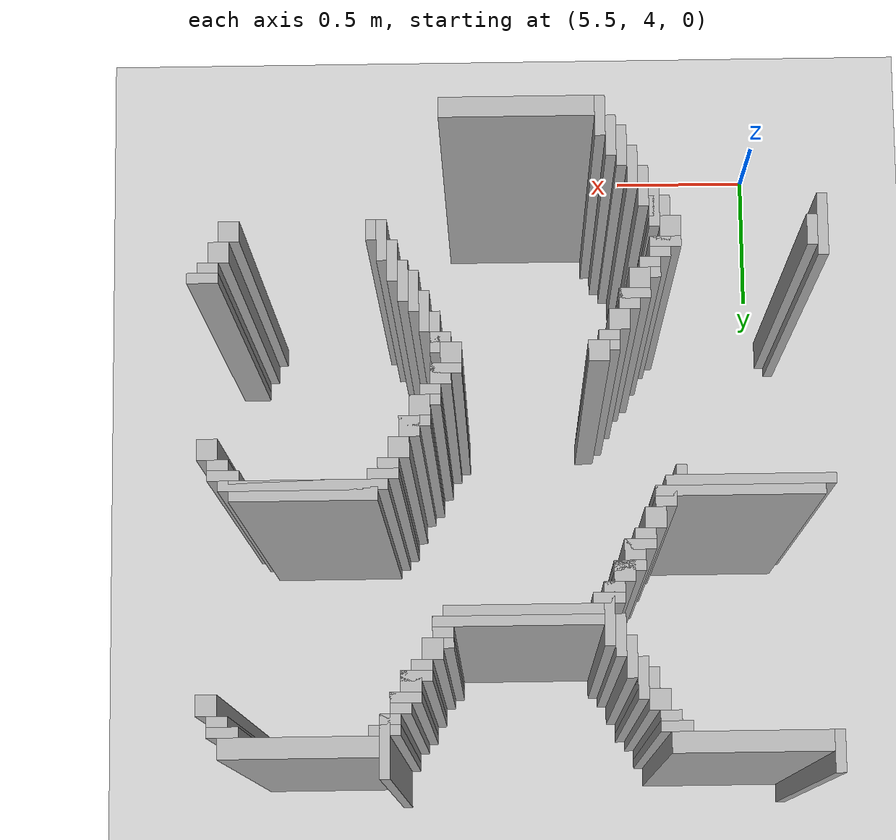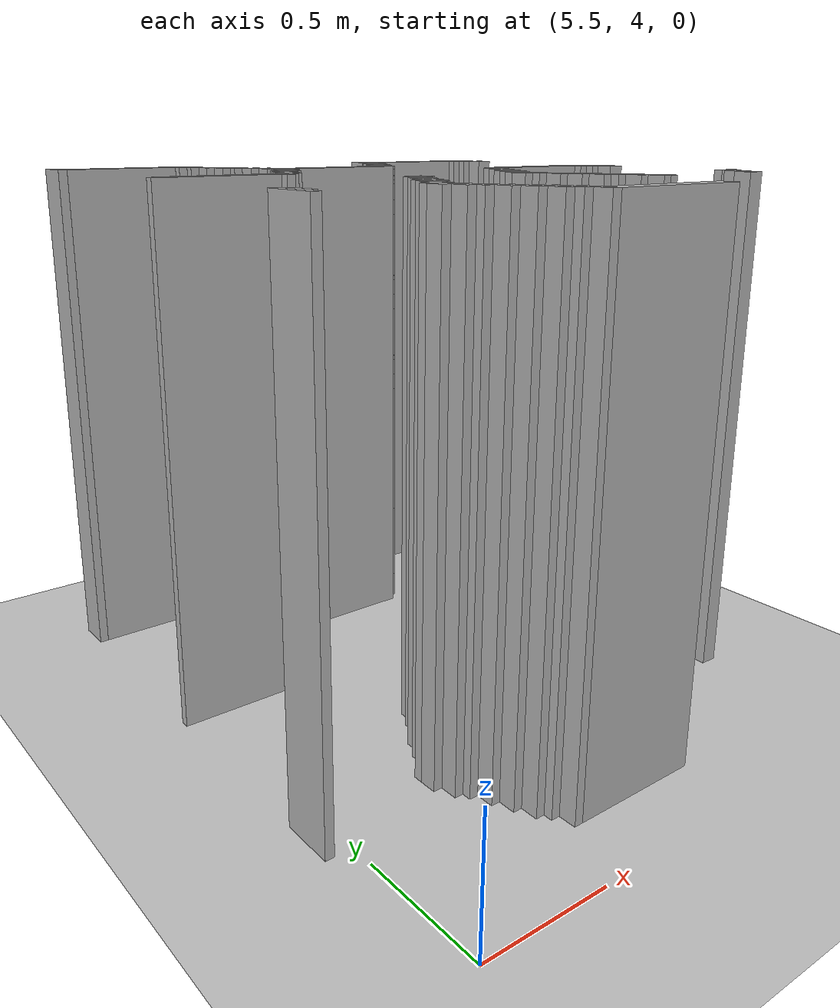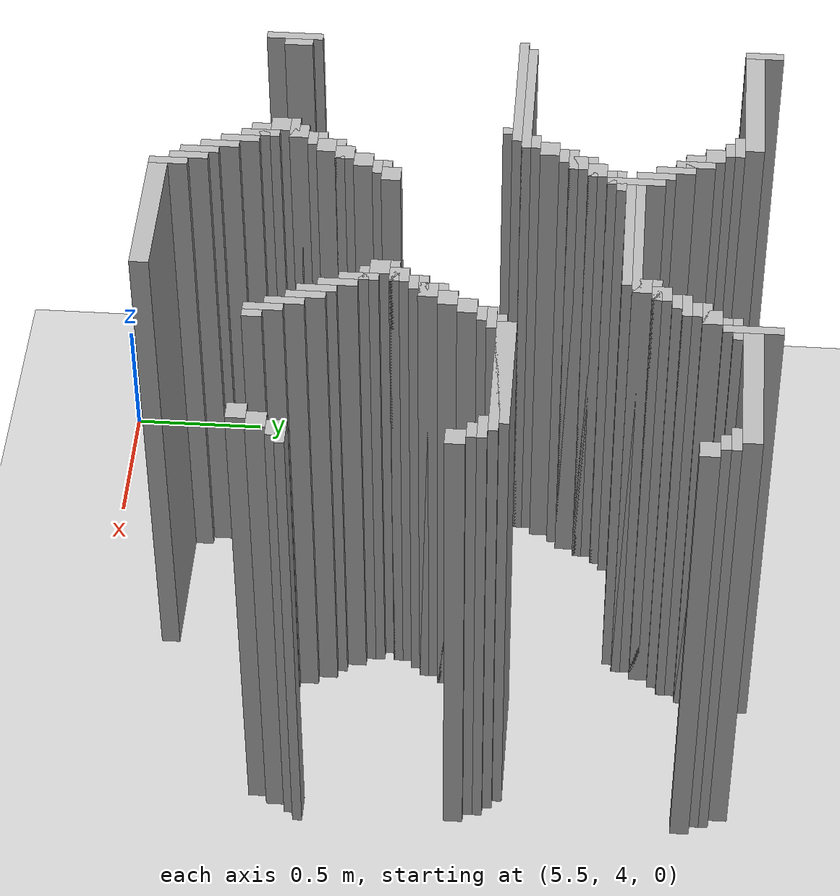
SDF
<sdf version="1.6">
 <world name="slam_world">
  <model name="ground_plane">
   <static>true</static>
   <link name="link">
    <collision name="collision">
     <geometry><plane><normal>0 0 1</normal><size>100 100</size></plane></geometry>
    </collision>
    <visual name="visual">
     <geometry><plane><normal>0 0 1</normal><size>100 100</size></plane></geometry>
     <material>
      <ambient>0.8 0.8 0.8 1</ambient>
      <diffuse>0.8 0.8 0.8 1</diffuse>
      <specular>0.8 0.8 0.8 1</specular>
     </material>
    </visual>
   </link>
  </model>
  <model name="wall_3671">
   <static>true</static>
   <pose>5.41183294663573 6.438515081206496 1.0 0 0 0</pose>
   <link name="link">
    <collision name="collision">
     <geometry><box><size>0.03480278422273782 0.13921113689095127 2.0</size></box></geometry>
    </collision>
    <visual name="visual">
     <geometry><box><size>0.03480278422273782 0.13921113689095127 2.0</size></box></geometry>
     <material><ambient>0.5 0.5 0.5 1</ambient><diffuse>0.7 0.7 0.7 1</diffuse></material>
    </visual>
   </link>
  </model>
  <model name="wall_3672">
   <static>true</static>
   <pose>6.8735498839907185 6.403712296983758 1.0 0 0 0</pose>
   <link name="link">
    <collision name="collision">
     <geometry><box><size>0.03480278422273782 0.2088167053364269 2.0</size></box></geometry>
    </collision>
    <visual name="visual">
     <geometry><box><size>0.03480278422273782 0.2088167053364269 2.0</size></box></geometry>
     <material><ambient>0.5 0.5 0.5 1</ambient><diffuse>0.7 0.7 0.7 1</diffuse></material>
    </visual>
   </link>
  </model>
  <model name="wall_3692">
   <static>true</static>
   <pose>5.690255220417633 6.403712296983758 1.0 0 0 0</pose>
   <link name="link">
    <collision name="collision">
     <geometry><box><size>0.5220417633410672 0.06960556844547564 2.0</size></box></geometry>
    </collision>
    <visual name="visual">
     <geometry><box><size>0.5220417633410672 0.06960556844547564 2.0</size></box></geometry>
     <material><ambient>0.5 0.5 0.5 1</ambient><diffuse>0.7 0.7 0.7 1</diffuse></material>
    </visual>
   </link>
  </model>
  <model name="wall_3693">
   <static>true</static>
   <pose>7.151972157772621 6.403712296983758 1.0 0 0 0</pose>
   <link name="link">
    <collision name="collision">
     <geometry><box><size>0.5220417633410672 0.06960556844547564 2.0</size></box></geometry>
    </collision>
    <visual name="visual">
     <geometry><box><size>0.5220417633410672 0.06960556844547564 2.0</size></box></geometry>
     <material><ambient>0.5 0.5 0.5 1</ambient><diffuse>0.7 0.7 0.7 1</diffuse></material>
    </visual>
   </link>
  </model>
  <model name="wall_3716">
   <static>true</static>
   <pose>5.933874709976798 6.351508120649652 1.0 0 0 0</pose>
   <link name="link">
    <collision name="collision">
     <geometry><box><size>0.10440835266821345 0.03480278422273782 2.0</size></box></geometry>
    </collision>
    <visual name="visual">
     <geometry><box><size>0.10440835266821345 0.03480278422273782 2.0</size></box></geometry>
     <material><ambient>0.5 0.5 0.5 1</ambient><diffuse>0.7 0.7 0.7 1</diffuse></material>
    </visual>
   </link>
  </model>
  <model name="wall_3717">
   <static>true</static>
   <pose>6.8735498839907185 6.351508120649652 1.0 0 0 0</pose>
   <link name="link">
    <collision name="collision">
     <geometry><box><size>0.10440835266821345 0.03480278422273782 2.0</size></box></geometry>
    </collision>
    <visual name="visual">
     <geometry><box><size>0.10440835266821345 0.03480278422273782 2.0</size></box></geometry>
     <material><ambient>0.5 0.5 0.5 1</ambient><diffuse>0.7 0.7 0.7 1</diffuse></material>
    </visual>
   </link>
  </model>
  <model name="wall_3718">
   <static>true</static>
   <pose>7.395591647331786 6.351508120649652 1.0 0 0 0</pose>
   <link name="link">
    <collision name="collision">
     <geometry><box><size>0.10440835266821345 0.03480278422273782 2.0</size></box></geometry>
    </collision>
    <visual name="visual">
     <geometry><box><size>0.10440835266821345 0.03480278422273782 2.0</size></box></geometry>
     <material><ambient>0.5 0.5 0.5 1</ambient><diffuse>0.7 0.7 0.7 1</diffuse></material>
    </visual>
   </link>
  </model>
  <model name="wall_3729">
   <static>true</static>
   <pose>5.951276102088166 6.316705336426914 1.0 0 0 0</pose>
   <link name="link">
    <collision name="collision">
     <geometry><box><size>0.06960556844547564 0.03480278422273782 2.0</size></box></geometry>
    </collision>
    <visual name="visual">
     <geometry><box><size>0.06960556844547564 0.03480278422273782 2.0</size></box></geometry>
     <material><ambient>0.5 0.5 0.5 1</ambient><diffuse>0.7 0.7 0.7 1</diffuse></material>
    </visual>
   </link>
  </model>
  <model name="wall_3730">
   <static>true</static>
   <pose>6.85614849187935 6.316705336426914 1.0 0 0 0</pose>
   <link name="link">
    <collision name="collision">
     <geometry><box><size>0.06960556844547564 0.03480278422273782 2.0</size></box></geometry>
    </collision>
    <visual name="visual">
     <geometry><box><size>0.06960556844547564 0.03480278422273782 2.0</size></box></geometry>
     <material><ambient>0.5 0.5 0.5 1</ambient><diffuse>0.7 0.7 0.7 1</diffuse></material>
    </visual>
   </link>
  </model>
  <model name="wall_3731">
   <static>true</static>
   <pose>7.412993039443156 6.316705336426914 1.0 0 0 0</pose>
   <link name="link">
    <collision name="collision">
     <geometry><box><size>0.06960556844547564 0.03480278422273782 2.0</size></box></geometry>
    </collision>
    <visual name="visual">
     <geometry><box><size>0.06960556844547564 0.03480278422273782 2.0</size></box></geometry>
     <material><ambient>0.5 0.5 0.5 1</ambient><diffuse>0.7 0.7 0.7 1</diffuse></material>
    </visual>
   </link>
  </model>
  <model name="wall_3743">
   <static>true</static>
   <pose>5.986078886310905 6.2645011600928076 1.0 0 0 0</pose>
   <link name="link">
    <collision name="collision">
     <geometry><box><size>0.06960556844547564 0.06960556844547564 2.0</size></box></geometry>
    </collision>
    <visual name="visual">
     <geometry><box><size>0.06960556844547564 0.06960556844547564 2.0</size></box></geometry>
     <material><ambient>0.5 0.5 0.5 1</ambient><diffuse>0.7 0.7 0.7 1</diffuse></material>
    </visual>
   </link>
  </model>
  <model name="wall_3744">
   <static>true</static>
   <pose>6.821345707656612 6.2645011600928076 1.0 0 0 0</pose>
   <link name="link">
    <collision name="collision">
     <geometry><box><size>0.06960556844547564 0.06960556844547564 2.0</size></box></geometry>
    </collision>
    <visual name="visual">
     <geometry><box><size>0.06960556844547564 0.06960556844547564 2.0</size></box></geometry>
     <material><ambient>0.5 0.5 0.5 1</ambient><diffuse>0.7 0.7 0.7 1</diffuse></material>
    </visual>
   </link>
  </model>
  <model name="wall_3745">
   <static>true</static>
   <pose>7.447795823665893 6.2645011600928076 1.0 0 0 0</pose>
   <link name="link">
    <collision name="collision">
     <geometry><box><size>0.06960556844547564 0.06960556844547564 2.0</size></box></geometry>
    </collision>
    <visual name="visual">
     <geometry><box><size>0.06960556844547564 0.06960556844547564 2.0</size></box></geometry>
     <material><ambient>0.5 0.5 0.5 1</ambient><diffuse>0.7 0.7 0.7 1</diffuse></material>
    </visual>
   </link>
  </model>
  <model name="wall_3761">
   <static>true</static>
   <pose>6.038283062645012 6.194895591647332 1.0 0 0 0</pose>
   <link name="link">
    <collision name="collision">
     <geometry><box><size>0.03480278422273782 0.13921113689095127 2.0</size></box></geometry>
    </collision>
    <visual name="visual">
     <geometry><box><size>0.03480278422273782 0.13921113689095127 2.0</size></box></geometry>
     <material><ambient>0.5 0.5 0.5 1</ambient><diffuse>0.7 0.7 0.7 1</diffuse></material>
    </visual>
   </link>
  </model>
  <model name="wall_3762">
   <static>true</static>
   <pose>6.803944315545244 6.247099767981438 1.0 0 0 0</pose>
   <link name="link">
    <collision name="collision">
     <geometry><box><size>0.10440835266821345 0.03480278422273782 2.0</size></box></geometry>
    </collision>
    <visual name="visual">
     <geometry><box><size>0.10440835266821345 0.03480278422273782 2.0</size></box></geometry>
     <material><ambient>0.5 0.5 0.5 1</ambient><diffuse>0.7 0.7 0.7 1</diffuse></material>
    </visual>
   </link>
  </model>
  <model name="wall_3779">
   <static>true</static>
   <pose>6.020881670533642 6.194895591647332 1.0 0 0 0</pose>
   <link name="link">
    <collision name="collision">
     <geometry><box><size>0.06960556844547564 0.06960556844547564 2.0</size></box></geometry>
    </collision>
    <visual name="visual">
     <geometry><box><size>0.06960556844547564 0.06960556844547564 2.0</size></box></geometry>
     <material><ambient>0.5 0.5 0.5 1</ambient><diffuse>0.7 0.7 0.7 1</diffuse></material>
    </visual>
   </link>
  </model>
  <model name="wall_3780">
   <static>true</static>
   <pose>6.786542923433874 6.194895591647332 1.0 0 0 0</pose>
   <link name="link">
    <collision name="collision">
     <geometry><box><size>0.06960556844547564 0.06960556844547564 2.0</size></box></geometry>
    </collision>
    <visual name="visual">
     <geometry><box><size>0.06960556844547564 0.06960556844547564 2.0</size></box></geometry>
     <material><ambient>0.5 0.5 0.5 1</ambient><diffuse>0.7 0.7 0.7 1</diffuse></material>
    </visual>
   </link>
  </model>
  <model name="wall_3797">
   <static>true</static>
   <pose>6.073085846867749 6.125290023201856 1.0 0 0 0</pose>
   <link name="link">
    <collision name="collision">
     <geometry><box><size>0.03480278422273782 0.13921113689095127 2.0</size></box></geometry>
    </collision>
    <visual name="visual">
     <geometry><box><size>0.03480278422273782 0.13921113689095127 2.0</size></box></geometry>
     <material><ambient>0.5 0.5 0.5 1</ambient><diffuse>0.7 0.7 0.7 1</diffuse></material>
    </visual>
   </link>
  </model>
  <model name="wall_3798">
   <static>true</static>
   <pose>6.769141531322505 6.177494199535962 1.0 0 0 0</pose>
   <link name="link">
    <collision name="collision">
     <geometry><box><size>0.10440835266821345 0.03480278422273782 2.0</size></box></geometry>
    </collision>
    <visual name="visual">
     <geometry><box><size>0.10440835266821345 0.03480278422273782 2.0</size></box></geometry>
     <material><ambient>0.5 0.5 0.5 1</ambient><diffuse>0.7 0.7 0.7 1</diffuse></material>
    </visual>
   </link>
  </model>
  <model name="wall_3811">
   <static>true</static>
   <pose>6.751740139211137 6.142691415313225 1.0 0 0 0</pose>
   <link name="link">
    <collision name="collision">
     <geometry><box><size>0.06960556844547564 0.03480278422273782 2.0</size></box></geometry>
    </collision>
    <visual name="visual">
     <geometry><box><size>0.06960556844547564 0.03480278422273782 2.0</size></box></geometry>
     <material><ambient>0.5 0.5 0.5 1</ambient><diffuse>0.7 0.7 0.7 1</diffuse></material>
    </visual>
   </link>
  </model>
  <model name="wall_3824">
   <static>true</static>
   <pose>6.107888631090487 6.05568445475638 1.0 0 0 0</pose>
   <link name="link">
    <collision name="collision">
     <geometry><box><size>0.03480278422273782 0.13921113689095127 2.0</size></box></geometry>
    </collision>
    <visual name="visual">
     <geometry><box><size>0.03480278422273782 0.13921113689095127 2.0</size></box></geometry>
     <material><ambient>0.5 0.5 0.5 1</ambient><diffuse>0.7 0.7 0.7 1</diffuse></material>
    </visual>
   </link>
  </model>
  <model name="wall_3825">
   <static>true</static>
   <pose>6.716937354988398 6.090487238979118 1.0 0 0 0</pose>
   <link name="link">
    <collision name="collision">
     <geometry><box><size>0.06960556844547564 0.06960556844547564 2.0</size></box></geometry>
    </collision>
    <visual name="visual">
     <geometry><box><size>0.06960556844547564 0.06960556844547564 2.0</size></box></geometry>
     <material><ambient>0.5 0.5 0.5 1</ambient><diffuse>0.7 0.7 0.7 1</diffuse></material>
    </visual>
   </link>
  </model>
  <model name="wall_3842">
   <static>true</static>
   <pose>6.142691415313225 5.986078886310905 1.0 0 0 0</pose>
   <link name="link">
    <collision name="collision">
     <geometry><box><size>0.03480278422273782 0.2088167053364269 2.0</size></box></geometry>
    </collision>
    <visual name="visual">
     <geometry><box><size>0.03480278422273782 0.2088167053364269 2.0</size></box></geometry>
     <material><ambient>0.5 0.5 0.5 1</ambient><diffuse>0.7 0.7 0.7 1</diffuse></material>
    </visual>
   </link>
  </model>
  <model name="wall_3843">
   <static>true</static>
   <pose>6.69953596287703 6.073085846867749 1.0 0 0 0</pose>
   <link name="link">
    <collision name="collision">
     <geometry><box><size>0.10440835266821345 0.03480278422273782 2.0</size></box></geometry>
    </collision>
    <visual name="visual">
     <geometry><box><size>0.10440835266821345 0.03480278422273782 2.0</size></box></geometry>
     <material><ambient>0.5 0.5 0.5 1</ambient><diffuse>0.7 0.7 0.7 1</diffuse></material>
    </visual>
   </link>
  </model>
  <model name="wall_3856">
   <static>true</static>
   <pose>6.682134570765661 6.020881670533642 1.0 0 0 0</pose>
   <link name="link">
    <collision name="collision">
     <geometry><box><size>0.06960556844547564 0.06960556844547564 2.0</size></box></geometry>
    </collision>
    <visual name="visual">
     <geometry><box><size>0.06960556844547564 0.06960556844547564 2.0</size></box></geometry>
     <material><ambient>0.5 0.5 0.5 1</ambient><diffuse>0.7 0.7 0.7 1</diffuse></material>
    </visual>
   </link>
  </model>
  <model name="wall_3869">
   <static>true</static>
   <pose>6.438515081206496 6.003480278422273 1.0 0 0 0</pose>
   <link name="link">
    <collision name="collision">
     <geometry><box><size>0.5568445475638051 0.03480278422273782 2.0</size></box></geometry>
    </collision>
    <visual name="visual">
     <geometry><box><size>0.5568445475638051 0.03480278422273782 2.0</size></box></geometry>
     <material><ambient>0.5 0.5 0.5 1</ambient><diffuse>0.7 0.7 0.7 1</diffuse></material>
    </visual>
   </link>
  </model>
  <model name="wall_3881">
   <static>true</static>
   <pose>6.421113689095128 5.968677494199536 1.0 0 0 0</pose>
   <link name="link">
    <collision name="collision">
     <geometry><box><size>0.5220417633410672 0.03480278422273782 2.0</size></box></geometry>
    </collision>
    <visual name="visual">
     <geometry><box><size>0.5220417633410672 0.03480278422273782 2.0</size></box></geometry>
     <material><ambient>0.5 0.5 0.5 1</ambient><diffuse>0.7 0.7 0.7 1</diffuse></material>
    </visual>
   </link>
  </model>
  <model name="wall_3892">
   <static>true</static>
   <pose>6.142691415313225 5.933874709976798 1.0 0 0 0</pose>
   <link name="link">
    <collision name="collision">
     <geometry><box><size>0.10440835266821345 0.03480278422273782 2.0</size></box></geometry>
    </collision>
    <visual name="visual">
     <geometry><box><size>0.10440835266821345 0.03480278422273782 2.0</size></box></geometry>
     <material><ambient>0.5 0.5 0.5 1</ambient><diffuse>0.7 0.7 0.7 1</diffuse></material>
    </visual>
   </link>
  </model>
  <model name="wall_3900">
   <static>true</static>
   <pose>6.125290023201856 5.89907192575406 1.0 0 0 0</pose>
   <link name="link">
    <collision name="collision">
     <geometry><box><size>0.06960556844547564 0.03480278422273782 2.0</size></box></geometry>
    </collision>
    <visual name="visual">
     <geometry><box><size>0.06960556844547564 0.03480278422273782 2.0</size></box></geometry>
     <material><ambient>0.5 0.5 0.5 1</ambient><diffuse>0.7 0.7 0.7 1</diffuse></material>
    </visual>
   </link>
  </model>
  <model name="wall_3908">
   <static>true</static>
   <pose>6.090487238979118 5.846867749419953 1.0 0 0 0</pose>
   <link name="link">
    <collision name="collision">
     <geometry><box><size>0.06960556844547564 0.06960556844547564 2.0</size></box></geometry>
    </collision>
    <visual name="visual">
     <geometry><box><size>0.06960556844547564 0.06960556844547564 2.0</size></box></geometry>
     <material><ambient>0.5 0.5 0.5 1</ambient><diffuse>0.7 0.7 0.7 1</diffuse></material>
    </visual>
   </link>
  </model>
  <model name="wall_3919">
   <static>true</static>
   <pose>6.073085846867749 5.8294663573085845 1.0 0 0 0</pose>
   <link name="link">
    <collision name="collision">
     <geometry><box><size>0.10440835266821345 0.03480278422273782 2.0</size></box></geometry>
    </collision>
    <visual name="visual">
     <geometry><box><size>0.10440835266821345 0.03480278422273782 2.0</size></box></geometry>
     <material><ambient>0.5 0.5 0.5 1</ambient><diffuse>0.7 0.7 0.7 1</diffuse></material>
    </visual>
   </link>
  </model>
  <model name="wall_3930">
   <static>true</static>
   <pose>6.05568445475638 5.7772621809744775 1.0 0 0 0</pose>
   <link name="link">
    <collision name="collision">
     <geometry><box><size>0.06960556844547564 0.06960556844547564 2.0</size></box></geometry>
    </collision>
    <visual name="visual">
     <geometry><box><size>0.06960556844547564 0.06960556844547564 2.0</size></box></geometry>
     <material><ambient>0.5 0.5 0.5 1</ambient><diffuse>0.7 0.7 0.7 1</diffuse></material>
    </visual>
   </link>
  </model>
  <model name="wall_3941">
   <static>true</static>
   <pose>6.038283062645012 5.759860788863109 1.0 0 0 0</pose>
   <link name="link">
    <collision name="collision">
     <geometry><box><size>0.10440835266821345 0.03480278422273782 2.0</size></box></geometry>
    </collision>
    <visual name="visual">
     <geometry><box><size>0.10440835266821345 0.03480278422273782 2.0</size></box></geometry>
     <material><ambient>0.5 0.5 0.5 1</ambient><diffuse>0.7 0.7 0.7 1</diffuse></material>
    </visual>
   </link>
  </model>
  <model name="wall_3951">
   <static>true</static>
   <pose>6.020881670533642 5.725058004640371 1.0 0 0 0</pose>
   <link name="link">
    <collision name="collision">
     <geometry><box><size>0.06960556844547564 0.03480278422273782 2.0</size></box></geometry>
    </collision>
    <visual name="visual">
     <geometry><box><size>0.06960556844547564 0.03480278422273782 2.0</size></box></geometry>
     <material><ambient>0.5 0.5 0.5 1</ambient><diffuse>0.7 0.7 0.7 1</diffuse></material>
    </visual>
   </link>
  </model>
  <model name="wall_3961">
   <static>true</static>
   <pose>5.986078886310905 5.672853828306264 1.0 0 0 0</pose>
   <link name="link">
    <collision name="collision">
     <geometry><box><size>0.06960556844547564 0.06960556844547564 2.0</size></box></geometry>
    </collision>
    <visual name="visual">
     <geometry><box><size>0.06960556844547564 0.06960556844547564 2.0</size></box></geometry>
     <material><ambient>0.5 0.5 0.5 1</ambient><diffuse>0.7 0.7 0.7 1</diffuse></material>
    </visual>
   </link>
  </model>
  <model name="wall_3972">
   <static>true</static>
   <pose>5.951276102088166 5.603248259860789 1.0 0 0 0</pose>
   <link name="link">
    <collision name="collision">
     <geometry><box><size>0.06960556844547564 0.06960556844547564 2.0</size></box></geometry>
    </collision>
    <visual name="visual">
     <geometry><box><size>0.06960556844547564 0.06960556844547564 2.0</size></box></geometry>
     <material><ambient>0.5 0.5 0.5 1</ambient><diffuse>0.7 0.7 0.7 1</diffuse></material>
    </visual>
   </link>
  </model>
  <model name="wall_3983">
   <static>true</static>
   <pose>5.707656612529002 5.58584686774942 1.0 0 0 0</pose>
   <link name="link">
    <collision name="collision">
     <geometry><box><size>0.5568445475638051 0.03480278422273782 2.0</size></box></geometry>
    </collision>
    <visual name="visual">
     <geometry><box><size>0.5568445475638051 0.03480278422273782 2.0</size></box></geometry>
     <material><ambient>0.5 0.5 0.5 1</ambient><diffuse>0.7 0.7 0.7 1</diffuse></material>
    </visual>
   </link>
  </model>
  <model name="wall_3984">
   <static>true</static>
   <pose>7.134570765661253 5.56844547563805 1.0 0 0 0</pose>
   <link name="link">
    <collision name="collision">
     <geometry><box><size>0.4872389791183295 0.06960556844547564 2.0</size></box></geometry>
    </collision>
    <visual name="visual">
     <geometry><box><size>0.4872389791183295 0.06960556844547564 2.0</size></box></geometry>
     <material><ambient>0.5 0.5 0.5 1</ambient><diffuse>0.7 0.7 0.7 1</diffuse></material>
    </visual>
   </link>
  </model>
  <model name="wall_3995">
   <static>true</static>
   <pose>5.672853828306264 5.551044083526682 1.0 0 0 0</pose>
   <link name="link">
    <collision name="collision">
     <geometry><box><size>0.5568445475638051 0.03480278422273782 2.0</size></box></geometry>
    </collision>
    <visual name="visual">
     <geometry><box><size>0.5568445475638051 0.03480278422273782 2.0</size></box></geometry>
     <material><ambient>0.5 0.5 0.5 1</ambient><diffuse>0.7 0.7 0.7 1</diffuse></material>
    </visual>
   </link>
  </model>
  <model name="wall_3996">
   <static>true</static>
   <pose>7.134570765661253 5.551044083526682 1.0 0 0 0</pose>
   <link name="link">
    <collision name="collision">
     <geometry><box><size>0.5568445475638051 0.03480278422273782 2.0</size></box></geometry>
    </collision>
    <visual name="visual">
     <geometry><box><size>0.5568445475638051 0.03480278422273782 2.0</size></box></geometry>
     <material><ambient>0.5 0.5 0.5 1</ambient><diffuse>0.7 0.7 0.7 1</diffuse></material>
    </visual>
   </link>
  </model>
  <model name="wall_4010">
   <static>true</static>
   <pose>5.89907192575406 5.516241299303944 1.0 0 0 0</pose>
   <link name="link">
    <collision name="collision">
     <geometry><box><size>0.03480278422273782 0.03480278422273782 2.0</size></box></geometry>
    </collision>
    <visual name="visual">
     <geometry><box><size>0.03480278422273782 0.03480278422273782 2.0</size></box></geometry>
     <material><ambient>0.5 0.5 0.5 1</ambient><diffuse>0.7 0.7 0.7 1</diffuse></material>
    </visual>
   </link>
  </model>
  <model name="wall_4011">
   <static>true</static>
   <pose>6.8735498839907185 5.516241299303944 1.0 0 0 0</pose>
   <link name="link">
    <collision name="collision">
     <geometry><box><size>0.10440835266821345 0.03480278422273782 2.0</size></box></geometry>
    </collision>
    <visual name="visual">
     <geometry><box><size>0.10440835266821345 0.03480278422273782 2.0</size></box></geometry>
     <material><ambient>0.5 0.5 0.5 1</ambient><diffuse>0.7 0.7 0.7 1</diffuse></material>
    </visual>
   </link>
  </model>
  <model name="wall_4012">
   <static>true</static>
   <pose>7.395591647331786 5.516241299303944 1.0 0 0 0</pose>
   <link name="link">
    <collision name="collision">
     <geometry><box><size>0.10440835266821345 0.03480278422273782 2.0</size></box></geometry>
    </collision>
    <visual name="visual">
     <geometry><box><size>0.10440835266821345 0.03480278422273782 2.0</size></box></geometry>
     <material><ambient>0.5 0.5 0.5 1</ambient><diffuse>0.7 0.7 0.7 1</diffuse></material>
    </visual>
   </link>
  </model>
  <model name="wall_4027">
   <static>true</static>
   <pose>6.85614849187935 5.481438515081206 1.0 0 0 0</pose>
   <link name="link">
    <collision name="collision">
     <geometry><box><size>0.06960556844547564 0.03480278422273782 2.0</size></box></geometry>
    </collision>
    <visual name="visual">
     <geometry><box><size>0.06960556844547564 0.03480278422273782 2.0</size></box></geometry>
     <material><ambient>0.5 0.5 0.5 1</ambient><diffuse>0.7 0.7 0.7 1</diffuse></material>
    </visual>
   </link>
  </model>
  <model name="wall_4028">
   <static>true</static>
   <pose>7.412993039443156 5.481438515081206 1.0 0 0 0</pose>
   <link name="link">
    <collision name="collision">
     <geometry><box><size>0.06960556844547564 0.03480278422273782 2.0</size></box></geometry>
    </collision>
    <visual name="visual">
     <geometry><box><size>0.06960556844547564 0.03480278422273782 2.0</size></box></geometry>
     <material><ambient>0.5 0.5 0.5 1</ambient><diffuse>0.7 0.7 0.7 1</diffuse></material>
    </visual>
   </link>
  </model>
  <model name="wall_4042">
   <static>true</static>
   <pose>6.821345707656612 5.4292343387471 1.0 0 0 0</pose>
   <link name="link">
    <collision name="collision">
     <geometry><box><size>0.06960556844547564 0.06960556844547564 2.0</size></box></geometry>
    </collision>
    <visual name="visual">
     <geometry><box><size>0.06960556844547564 0.06960556844547564 2.0</size></box></geometry>
     <material><ambient>0.5 0.5 0.5 1</ambient><diffuse>0.7 0.7 0.7 1</diffuse></material>
    </visual>
   </link>
  </model>
  <model name="wall_4043">
   <static>true</static>
   <pose>7.447795823665893 5.4292343387471 1.0 0 0 0</pose>
   <link name="link">
    <collision name="collision">
     <geometry><box><size>0.06960556844547564 0.06960556844547564 2.0</size></box></geometry>
    </collision>
    <visual name="visual">
     <geometry><box><size>0.06960556844547564 0.06960556844547564 2.0</size></box></geometry>
     <material><ambient>0.5 0.5 0.5 1</ambient><diffuse>0.7 0.7 0.7 1</diffuse></material>
    </visual>
   </link>
  </model>
  <model name="wall_4057">
   <static>true</static>
   <pose>6.786542923433874 5.359628770301624 1.0 0 0 0</pose>
   <link name="link">
    <collision name="collision">
     <geometry><box><size>0.06960556844547564 0.06960556844547564 2.0</size></box></geometry>
    </collision>
    <visual name="visual">
     <geometry><box><size>0.06960556844547564 0.06960556844547564 2.0</size></box></geometry>
     <material><ambient>0.5 0.5 0.5 1</ambient><diffuse>0.7 0.7 0.7 1</diffuse></material>
    </visual>
   </link>
  </model>
  <model name="wall_4072">
   <static>true</static>
   <pose>6.769141531322505 5.342227378190255 1.0 0 0 0</pose>
   <link name="link">
    <collision name="collision">
     <geometry><box><size>0.10440835266821345 0.03480278422273782 2.0</size></box></geometry>
    </collision>
    <visual name="visual">
     <geometry><box><size>0.10440835266821345 0.03480278422273782 2.0</size></box></geometry>
     <material><ambient>0.5 0.5 0.5 1</ambient><diffuse>0.7 0.7 0.7 1</diffuse></material>
    </visual>
   </link>
  </model>
  <model name="wall_4085">
   <static>true</static>
   <pose>6.751740139211137 5.290023201856148 1.0 0 0 0</pose>
   <link name="link">
    <collision name="collision">
     <geometry><box><size>0.06960556844547564 0.06960556844547564 2.0</size></box></geometry>
    </collision>
    <visual name="visual">
     <geometry><box><size>0.06960556844547564 0.06960556844547564 2.0</size></box></geometry>
     <material><ambient>0.5 0.5 0.5 1</ambient><diffuse>0.7 0.7 0.7 1</diffuse></material>
    </visual>
   </link>
  </model>
  <model name="wall_4098">
   <static>true</static>
   <pose>6.734338747099768 5.27262180974478 1.0 0 0 0</pose>
   <link name="link">
    <collision name="collision">
     <geometry><box><size>0.10440835266821345 0.03480278422273782 2.0</size></box></geometry>
    </collision>
    <visual name="visual">
     <geometry><box><size>0.10440835266821345 0.03480278422273782 2.0</size></box></geometry>
     <material><ambient>0.5 0.5 0.5 1</ambient><diffuse>0.7 0.7 0.7 1</diffuse></material>
    </visual>
   </link>
  </model>
  <model name="wall_4111">
   <static>true</static>
   <pose>6.716937354988398 5.237819025522041 1.0 0 0 0</pose>
   <link name="link">
    <collision name="collision">
     <geometry><box><size>0.06960556844547564 0.03480278422273782 2.0</size></box></geometry>
    </collision>
    <visual name="visual">
     <geometry><box><size>0.06960556844547564 0.03480278422273782 2.0</size></box></geometry>
     <material><ambient>0.5 0.5 0.5 1</ambient><diffuse>0.7 0.7 0.7 1</diffuse></material>
    </visual>
   </link>
  </model>
  <model name="wall_4121">
   <static>true</static>
   <pose>6.682134570765661 5.185614849187935 1.0 0 0 0</pose>
   <link name="link">
    <collision name="collision">
     <geometry><box><size>0.06960556844547564 0.06960556844547564 2.0</size></box></geometry>
    </collision>
    <visual name="visual">
     <geometry><box><size>0.06960556844547564 0.06960556844547564 2.0</size></box></geometry>
     <material><ambient>0.5 0.5 0.5 1</ambient><diffuse>0.7 0.7 0.7 1</diffuse></material>
    </visual>
   </link>
  </model>
  <model name="wall_4136">
   <static>true</static>
   <pose>6.664733178654292 5.168213457076566 1.0 0 0 0</pose>
   <link name="link">
    <collision name="collision">
     <geometry><box><size>0.10440835266821345 0.03480278422273782 2.0</size></box></geometry>
    </collision>
    <visual name="visual">
     <geometry><box><size>0.10440835266821345 0.03480278422273782 2.0</size></box></geometry>
     <material><ambient>0.5 0.5 0.5 1</ambient><diffuse>0.7 0.7 0.7 1</diffuse></material>
    </visual>
   </link>
  </model>
  <model name="wall_4150">
   <static>true</static>
   <pose>6.1600928074245935 5.1160092807424595 1.0 0 0 0</pose>
   <link name="link">
    <collision name="collision">
     <geometry><box><size>0.06960556844547564 0.06960556844547564 2.0</size></box></geometry>
    </collision>
    <visual name="visual">
     <geometry><box><size>0.06960556844547564 0.06960556844547564 2.0</size></box></geometry>
     <material><ambient>0.5 0.5 0.5 1</ambient><diffuse>0.7 0.7 0.7 1</diffuse></material>
    </visual>
   </link>
  </model>
  <model name="wall_4151">
   <static>true</static>
   <pose>6.647331786542924 5.1160092807424595 1.0 0 0 0</pose>
   <link name="link">
    <collision name="collision">
     <geometry><box><size>0.06960556844547564 0.06960556844547564 2.0</size></box></geometry>
    </collision>
    <visual name="visual">
     <geometry><box><size>0.06960556844547564 0.06960556844547564 2.0</size></box></geometry>
     <material><ambient>0.5 0.5 0.5 1</ambient><diffuse>0.7 0.7 0.7 1</diffuse></material>
    </visual>
   </link>
  </model>
  <model name="wall_4161">
   <static>true</static>
   <pose>6.142691415313225 5.09860788863109 1.0 0 0 0</pose>
   <link name="link">
    <collision name="collision">
     <geometry><box><size>0.10440835266821345 0.03480278422273782 2.0</size></box></geometry>
    </collision>
    <visual name="visual">
     <geometry><box><size>0.10440835266821345 0.03480278422273782 2.0</size></box></geometry>
     <material><ambient>0.5 0.5 0.5 1</ambient><diffuse>0.7 0.7 0.7 1</diffuse></material>
    </visual>
   </link>
  </model>
  <model name="wall_4162">
   <static>true</static>
   <pose>6.69953596287703 5.046403712296984 1.0 0 0 0</pose>
   <link name="link">
    <collision name="collision">
     <geometry><box><size>0.03480278422273782 0.13921113689095127 2.0</size></box></geometry>
    </collision>
    <visual name="visual">
     <geometry><box><size>0.03480278422273782 0.13921113689095127 2.0</size></box></geometry>
     <material><ambient>0.5 0.5 0.5 1</ambient><diffuse>0.7 0.7 0.7 1</diffuse></material>
    </visual>
   </link>
  </model>
  <model name="wall_4175">
   <static>true</static>
   <pose>6.125290023201856 5.0638051044083525 1.0 0 0 0</pose>
   <link name="link">
    <collision name="collision">
     <geometry><box><size>0.06960556844547564 0.03480278422273782 2.0</size></box></geometry>
    </collision>
    <visual name="visual">
     <geometry><box><size>0.06960556844547564 0.03480278422273782 2.0</size></box></geometry>
     <material><ambient>0.5 0.5 0.5 1</ambient><diffuse>0.7 0.7 0.7 1</diffuse></material>
    </visual>
   </link>
  </model>
  <model name="wall_4176">
   <static>true</static>
   <pose>6.682134570765661 5.0638051044083525 1.0 0 0 0</pose>
   <link name="link">
    <collision name="collision">
     <geometry><box><size>0.06960556844547564 0.03480278422273782 2.0</size></box></geometry>
    </collision>
    <visual name="visual">
     <geometry><box><size>0.06960556844547564 0.03480278422273782 2.0</size></box></geometry>
     <material><ambient>0.5 0.5 0.5 1</ambient><diffuse>0.7 0.7 0.7 1</diffuse></material>
    </visual>
   </link>
  </model>
  <model name="wall_4190">
   <static>true</static>
   <pose>6.090487238979118 5.0116009280742455 1.0 0 0 0</pose>
   <link name="link">
    <collision name="collision">
     <geometry><box><size>0.06960556844547564 0.06960556844547564 2.0</size></box></geometry>
    </collision>
    <visual name="visual">
     <geometry><box><size>0.06960556844547564 0.06960556844547564 2.0</size></box></geometry>
     <material><ambient>0.5 0.5 0.5 1</ambient><diffuse>0.7 0.7 0.7 1</diffuse></material>
    </visual>
   </link>
  </model>
  <model name="wall_4191">
   <static>true</static>
   <pose>6.734338747099768 4.976798143851508 1.0 0 0 0</pose>
   <link name="link">
    <collision name="collision">
     <geometry><box><size>0.03480278422273782 0.13921113689095127 2.0</size></box></geometry>
    </collision>
    <visual name="visual">
     <geometry><box><size>0.03480278422273782 0.13921113689095127 2.0</size></box></geometry>
     <material><ambient>0.5 0.5 0.5 1</ambient><diffuse>0.7 0.7 0.7 1</diffuse></material>
    </visual>
   </link>
  </model>
  <model name="wall_4205">
   <static>true</static>
   <pose>6.05568445475638 4.94199535962877 1.0 0 0 0</pose>
   <link name="link">
    <collision name="collision">
     <geometry><box><size>0.06960556844547564 0.06960556844547564 2.0</size></box></geometry>
    </collision>
    <visual name="visual">
     <geometry><box><size>0.06960556844547564 0.06960556844547564 2.0</size></box></geometry>
     <material><ambient>0.5 0.5 0.5 1</ambient><diffuse>0.7 0.7 0.7 1</diffuse></material>
    </visual>
   </link>
  </model>
  <model name="wall_4206">
   <static>true</static>
   <pose>6.769141531322505 4.907192575406032 1.0 0 0 0</pose>
   <link name="link">
    <collision name="collision">
     <geometry><box><size>0.03480278422273782 0.13921113689095127 2.0</size></box></geometry>
    </collision>
    <visual name="visual">
     <geometry><box><size>0.03480278422273782 0.13921113689095127 2.0</size></box></geometry>
     <material><ambient>0.5 0.5 0.5 1</ambient><diffuse>0.7 0.7 0.7 1</diffuse></material>
    </visual>
   </link>
  </model>
  <model name="wall_4220">
   <static>true</static>
   <pose>6.038283062645012 4.924593967517401 1.0 0 0 0</pose>
   <link name="link">
    <collision name="collision">
     <geometry><box><size>0.10440835266821345 0.03480278422273782 2.0</size></box></geometry>
    </collision>
    <visual name="visual">
     <geometry><box><size>0.10440835266821345 0.03480278422273782 2.0</size></box></geometry>
     <material><ambient>0.5 0.5 0.5 1</ambient><diffuse>0.7 0.7 0.7 1</diffuse></material>
    </visual>
   </link>
  </model>
  <model name="wall_4221">
   <static>true</static>
   <pose>6.803944315545244 4.872389791183294 1.0 0 0 0</pose>
   <link name="link">
    <collision name="collision">
     <geometry><box><size>0.03480278422273782 0.13921113689095127 2.0</size></box></geometry>
    </collision>
    <visual name="visual">
     <geometry><box><size>0.03480278422273782 0.13921113689095127 2.0</size></box></geometry>
     <material><ambient>0.5 0.5 0.5 1</ambient><diffuse>0.7 0.7 0.7 1</diffuse></material>
    </visual>
   </link>
  </model>
  <model name="wall_4234">
   <static>true</static>
   <pose>6.020881670533642 4.872389791183294 1.0 0 0 0</pose>
   <link name="link">
    <collision name="collision">
     <geometry><box><size>0.06960556844547564 0.06960556844547564 2.0</size></box></geometry>
    </collision>
    <visual name="visual">
     <geometry><box><size>0.06960556844547564 0.06960556844547564 2.0</size></box></geometry>
     <material><ambient>0.5 0.5 0.5 1</ambient><diffuse>0.7 0.7 0.7 1</diffuse></material>
    </visual>
   </link>
  </model>
  <model name="wall_4246">
   <static>true</static>
   <pose>6.003480278422273 4.854988399071925 1.0 0 0 0</pose>
   <link name="link">
    <collision name="collision">
     <geometry><box><size>0.10440835266821345 0.03480278422273782 2.0</size></box></geometry>
    </collision>
    <visual name="visual">
     <geometry><box><size>0.10440835266821345 0.03480278422273782 2.0</size></box></geometry>
     <material><ambient>0.5 0.5 0.5 1</ambient><diffuse>0.7 0.7 0.7 1</diffuse></material>
    </visual>
   </link>
  </model>
  <model name="wall_4247">
   <static>true</static>
   <pose>6.838747099767981 4.802784222737819 1.0 0 0 0</pose>
   <link name="link">
    <collision name="collision">
     <geometry><box><size>0.03480278422273782 0.13921113689095127 2.0</size></box></geometry>
    </collision>
    <visual name="visual">
     <geometry><box><size>0.03480278422273782 0.13921113689095127 2.0</size></box></geometry>
     <material><ambient>0.5 0.5 0.5 1</ambient><diffuse>0.7 0.7 0.7 1</diffuse></material>
    </visual>
   </link>
  </model>
  <model name="wall_4248">
   <static>true</static>
   <pose>7.465197215777262 4.854988399071925 1.0 0 0 0</pose>
   <link name="link">
    <collision name="collision">
     <geometry><box><size>0.10440835266821345 0.03480278422273782 2.0</size></box></geometry>
    </collision>
    <visual name="visual">
     <geometry><box><size>0.10440835266821345 0.03480278422273782 2.0</size></box></geometry>
     <material><ambient>0.5 0.5 0.5 1</ambient><diffuse>0.7 0.7 0.7 1</diffuse></material>
    </visual>
   </link>
  </model>
  <model name="wall_4259">
   <static>true</static>
   <pose>5.986078886310905 4.820185614849188 1.0 0 0 0</pose>
   <link name="link">
    <collision name="collision">
     <geometry><box><size>0.06960556844547564 0.03480278422273782 2.0</size></box></geometry>
    </collision>
    <visual name="visual">
     <geometry><box><size>0.06960556844547564 0.03480278422273782 2.0</size></box></geometry>
     <material><ambient>0.5 0.5 0.5 1</ambient><diffuse>0.7 0.7 0.7 1</diffuse></material>
    </visual>
   </link>
  </model>
  <model name="wall_4260">
   <static>true</static>
   <pose>7.447795823665893 4.820185614849188 1.0 0 0 0</pose>
   <link name="link">
    <collision name="collision">
     <geometry><box><size>0.06960556844547564 0.03480278422273782 2.0</size></box></geometry>
    </collision>
    <visual name="visual">
     <geometry><box><size>0.06960556844547564 0.03480278422273782 2.0</size></box></geometry>
     <material><ambient>0.5 0.5 0.5 1</ambient><diffuse>0.7 0.7 0.7 1</diffuse></material>
    </visual>
   </link>
  </model>
  <model name="wall_4269">
   <static>true</static>
   <pose>5.41183294663573 4.698375870069605 1.0 0 0 0</pose>
   <link name="link">
    <collision name="collision">
     <geometry><box><size>0.03480278422273782 0.2088167053364269 2.0</size></box></geometry>
    </collision>
    <visual name="visual">
     <geometry><box><size>0.03480278422273782 0.2088167053364269 2.0</size></box></geometry>
     <material><ambient>0.5 0.5 0.5 1</ambient><diffuse>0.7 0.7 0.7 1</diffuse></material>
    </visual>
   </link>
  </model>
  <model name="wall_4270">
   <static>true</static>
   <pose>5.951276102088166 4.767981438515081 1.0 0 0 0</pose>
   <link name="link">
    <collision name="collision">
     <geometry><box><size>0.06960556844547564 0.06960556844547564 2.0</size></box></geometry>
    </collision>
    <visual name="visual">
     <geometry><box><size>0.06960556844547564 0.06960556844547564 2.0</size></box></geometry>
     <material><ambient>0.5 0.5 0.5 1</ambient><diffuse>0.7 0.7 0.7 1</diffuse></material>
    </visual>
   </link>
  </model>
  <model name="wall_4271">
   <static>true</static>
   <pose>6.8735498839907185 4.7331786542923435 1.0 0 0 0</pose>
   <link name="link">
    <collision name="collision">
     <geometry><box><size>0.03480278422273782 0.13921113689095127 2.0</size></box></geometry>
    </collision>
    <visual name="visual">
     <geometry><box><size>0.03480278422273782 0.13921113689095127 2.0</size></box></geometry>
     <material><ambient>0.5 0.5 0.5 1</ambient><diffuse>0.7 0.7 0.7 1</diffuse></material>
    </visual>
   </link>
  </model>
  <model name="wall_4272">
   <static>true</static>
   <pose>7.412993039443156 4.767981438515081 1.0 0 0 0</pose>
   <link name="link">
    <collision name="collision">
     <geometry><box><size>0.06960556844547564 0.06960556844547564 2.0</size></box></geometry>
    </collision>
    <visual name="visual">
     <geometry><box><size>0.06960556844547564 0.06960556844547564 2.0</size></box></geometry>
     <material><ambient>0.5 0.5 0.5 1</ambient><diffuse>0.7 0.7 0.7 1</diffuse></material>
    </visual>
   </link>
  </model>
  <model name="wall_4283">
   <static>true</static>
   <pose>5.4466357308584685 4.715777262180974 1.0 0 0 0</pose>
   <link name="link">
    <collision name="collision">
     <geometry><box><size>0.03480278422273782 0.10440835266821345 2.0</size></box></geometry>
    </collision>
    <visual name="visual">
     <geometry><box><size>0.03480278422273782 0.10440835266821345 2.0</size></box></geometry>
     <material><ambient>0.5 0.5 0.5 1</ambient><diffuse>0.7 0.7 0.7 1</diffuse></material>
    </visual>
   </link>
  </model>
  <model name="wall_4284">
   <static>true</static>
   <pose>5.933874709976798 4.750580046403712 1.0 0 0 0</pose>
   <link name="link">
    <collision name="collision">
     <geometry><box><size>0.10440835266821345 0.03480278422273782 2.0</size></box></geometry>
    </collision>
    <visual name="visual">
     <geometry><box><size>0.10440835266821345 0.03480278422273782 2.0</size></box></geometry>
     <material><ambient>0.5 0.5 0.5 1</ambient><diffuse>0.7 0.7 0.7 1</diffuse></material>
    </visual>
   </link>
  </model>
  <model name="wall_4296">
   <static>true</static>
   <pose>5.916473317865429 4.698375870069605 1.0 0 0 0</pose>
   <link name="link">
    <collision name="collision">
     <geometry><box><size>0.06960556844547564 0.06960556844547564 2.0</size></box></geometry>
    </collision>
    <visual name="visual">
     <geometry><box><size>0.06960556844547564 0.06960556844547564 2.0</size></box></geometry>
     <material><ambient>0.5 0.5 0.5 1</ambient><diffuse>0.7 0.7 0.7 1</diffuse></material>
    </visual>
   </link>
  </model>
  <model name="wall_4297">
   <static>true</static>
   <pose>6.908352668213457 4.698375870069605 1.0 0 0 0</pose>
   <link name="link">
    <collision name="collision">
     <geometry><box><size>0.03480278422273782 0.06960556844547564 2.0</size></box></geometry>
    </collision>
    <visual name="visual">
     <geometry><box><size>0.03480278422273782 0.06960556844547564 2.0</size></box></geometry>
     <material><ambient>0.5 0.5 0.5 1</ambient><diffuse>0.7 0.7 0.7 1</diffuse></material>
    </visual>
   </link>
  </model>
  <model name="wall_4298">
   <static>true</static>
   <pose>7.378190255220417 4.698375870069605 1.0 0 0 0</pose>
   <link name="link">
    <collision name="collision">
     <geometry><box><size>0.06960556844547564 0.06960556844547564 2.0</size></box></geometry>
    </collision>
    <visual name="visual">
     <geometry><box><size>0.06960556844547564 0.06960556844547564 2.0</size></box></geometry>
     <material><ambient>0.5 0.5 0.5 1</ambient><diffuse>0.7 0.7 0.7 1</diffuse></material>
    </visual>
   </link>
  </model>
  <model name="wall_4308">
   <static>true</static>
   <pose>5.968677494199536 4.6287703016241295 1.0 0 0 0</pose>
   <link name="link">
    <collision name="collision">
     <geometry><box><size>0.03480278422273782 0.13921113689095127 2.0</size></box></geometry>
    </collision>
    <visual name="visual">
     <geometry><box><size>0.03480278422273782 0.13921113689095127 2.0</size></box></geometry>
     <material><ambient>0.5 0.5 0.5 1</ambient><diffuse>0.7 0.7 0.7 1</diffuse></material>
    </visual>
   </link>
  </model>
  <model name="wall_4320">
   <static>true</static>
   <pose>5.951276102088166 4.6287703016241295 1.0 0 0 0</pose>
   <link name="link">
    <collision name="collision">
     <geometry><box><size>0.06960556844547564 0.06960556844547564 2.0</size></box></geometry>
    </collision>
    <visual name="visual">
     <geometry><box><size>0.06960556844547564 0.06960556844547564 2.0</size></box></geometry>
     <material><ambient>0.5 0.5 0.5 1</ambient><diffuse>0.7 0.7 0.7 1</diffuse></material>
    </visual>
   </link>
  </model>
  <model name="wall_4333">
   <static>true</static>
   <pose>6.003480278422273 4.559164733178654 1.0 0 0 0</pose>
   <link name="link">
    <collision name="collision">
     <geometry><box><size>0.03480278422273782 0.13921113689095127 2.0</size></box></geometry>
    </collision>
    <visual name="visual">
     <geometry><box><size>0.03480278422273782 0.13921113689095127 2.0</size></box></geometry>
     <material><ambient>0.5 0.5 0.5 1</ambient><diffuse>0.7 0.7 0.7 1</diffuse></material>
    </visual>
   </link>
  </model>
  <model name="wall_4354">
   <static>true</static>
   <pose>6.038283062645012 4.489559164733178 1.0 0 0 0</pose>
   <link name="link">
    <collision name="collision">
     <geometry><box><size>0.03480278422273782 0.13921113689095127 2.0</size></box></geometry>
    </collision>
    <visual name="visual">
     <geometry><box><size>0.03480278422273782 0.13921113689095127 2.0</size></box></geometry>
     <material><ambient>0.5 0.5 0.5 1</ambient><diffuse>0.7 0.7 0.7 1</diffuse></material>
    </visual>
   </link>
  </model>
  <model name="wall_4367">
   <static>true</static>
   <pose>6.073085846867749 4.419953596287703 1.0 0 0 0</pose>
   <link name="link">
    <collision name="collision">
     <geometry><box><size>0.03480278422273782 0.13921113689095127 2.0</size></box></geometry>
    </collision>
    <visual name="visual">
     <geometry><box><size>0.03480278422273782 0.13921113689095127 2.0</size></box></geometry>
     <material><ambient>0.5 0.5 0.5 1</ambient><diffuse>0.7 0.7 0.7 1</diffuse></material>
    </visual>
   </link>
  </model>
  <model name="wall_4380">
   <static>true</static>
   <pose>6.107888631090487 4.385150812064965 1.0 0 0 0</pose>
   <link name="link">
    <collision name="collision">
     <geometry><box><size>0.03480278422273782 0.13921113689095127 2.0</size></box></geometry>
    </collision>
    <visual name="visual">
     <geometry><box><size>0.03480278422273782 0.13921113689095127 2.0</size></box></geometry>
     <material><ambient>0.5 0.5 0.5 1</ambient><diffuse>0.7 0.7 0.7 1</diffuse></material>
    </visual>
   </link>
  </model>
  <model name="wall_4399">
   <static>true</static>
   <pose>6.142691415313225 4.315545243619489 1.0 0 0 0</pose>
   <link name="link">
    <collision name="collision">
     <geometry><box><size>0.03480278422273782 0.13921113689095127 2.0</size></box></geometry>
    </collision>
    <visual name="visual">
     <geometry><box><size>0.03480278422273782 0.13921113689095127 2.0</size></box></geometry>
     <material><ambient>0.5 0.5 0.5 1</ambient><diffuse>0.7 0.7 0.7 1</diffuse></material>
    </visual>
   </link>
  </model>
  <model name="wall_4419">
   <static>true</static>
   <pose>6.421113689095128 4.280742459396752 1.0 0 0 0</pose>
   <link name="link">
    <collision name="collision">
     <geometry><box><size>0.5220417633410672 0.06960556844547564 2.0</size></box></geometry>
    </collision>
    <visual name="visual">
     <geometry><box><size>0.5220417633410672 0.06960556844547564 2.0</size></box></geometry>
     <material><ambient>0.5 0.5 0.5 1</ambient><diffuse>0.7 0.7 0.7 1</diffuse></material>
    </visual>
   </link>
  </model>
 </world>
</sdf>
